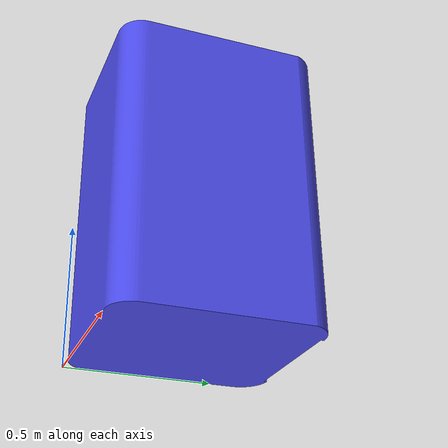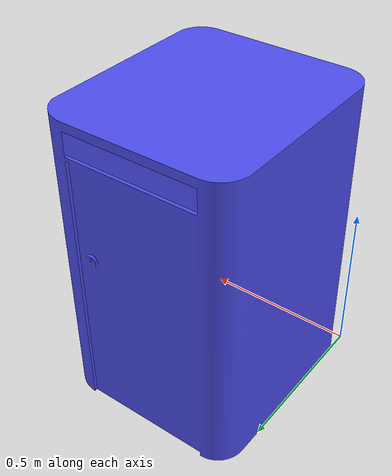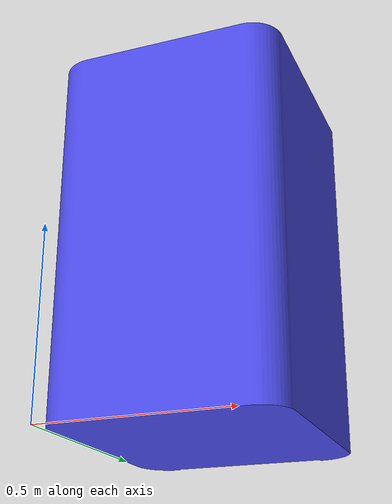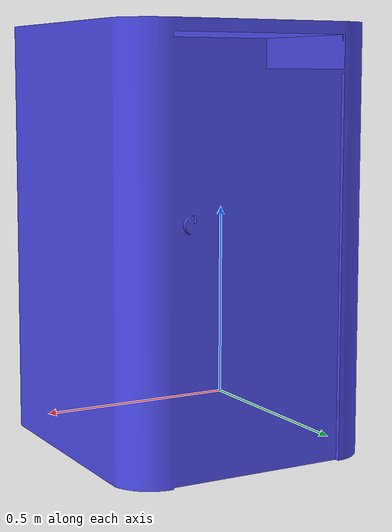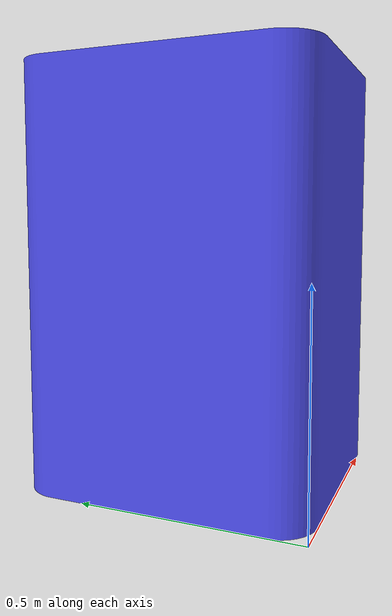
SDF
<?xml version='1.0'?>
<sdf version='1.6'>
  <model name='blue_bin_cuboid'>
    <link name='link_0'>
       <visual name='visual'>
        <pose frame=''>0 0 0 0 -0 0</pose>
        <geometry>
          <mesh>
            <uri>model://blue_bin_cuboid/meshes/blue_bin.stl</uri>
            <scale>1 1 1</scale>
          </mesh>
        </geometry>
        <material>
          <lighting>1</lighting>
             <ambient>0.074 0.074 0.937 1</ambient>
          <diffuse>0.3 0.3 0.937 1</diffuse>
          <specular>0.01 0.01 0.01 1</specular>
          <emissive>0.01 0.01 0.01 1</emissive>
          <shader type='vertex'>
            <normal_map>__default__</normal_map>
          </shader>
        </material>
        <cast_shadows>1</cast_shadows>
        <transparency>0</transparency>
      </visual>
      <collision name='collision'>
        <laser_retro>0</laser_retro>
        <max_contacts>10</max_contacts>
        <pose frame=''>0 0 0 0 -0 0</pose>
        <geometry>
          <mesh>
            <uri>model://blue_bin_cuboid/meshes/blue_bin.stl</uri>
            <scale>1 1 1</scale>
          </mesh>
        </geometry>
       </collision>
    </link>
    <static>1</static>
    <allow_auto_disable>1</allow_auto_disable>
  </model>
</sdf>
